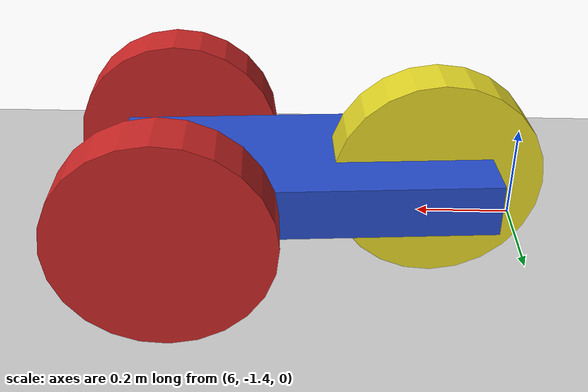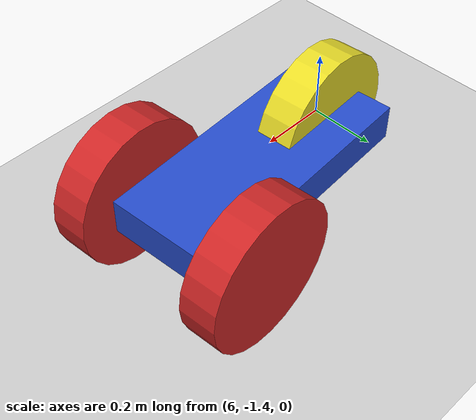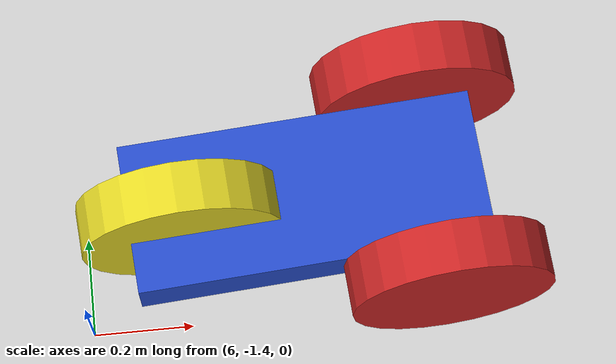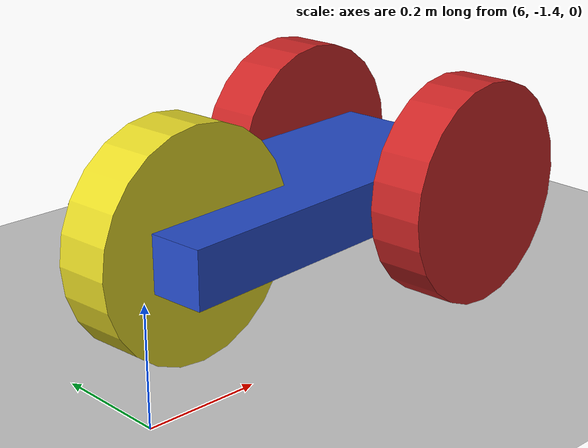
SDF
<sdf version="1.6">
 <world name="default">
  <model name="ground_plane">
   <static>1</static>
   <link name="link">
    <collision name="collision">
     <geometry><plane><normal>0 0 1</normal><size>100 100</size></plane></geometry>
     <surface><friction><ode><mu>100</mu><mu2>50</mu2></ode></friction></surface>
    </collision>
    <visual name="visual">
     <cast_shadows>0</cast_shadows>
     <geometry><plane><normal>0 0 1</normal><size>100 100</size></plane></geometry>
     <material>
      <script><uri>file://media/materials/scripts/gazebo.material</uri><name>Gazebo/Grey</name></script>
     </material>
    </visual>
   </link>
  </model>
  <model name="HumanoidRobot_0">
   <link name="base_link">
    <pose>-0.0625 -5e-06 0 0 -0 0</pose>
    <inertial>
     <mass>1</mass>
     <inertia>
      <ixx>0.166667</ixx>
      <ixy>0</ixy>
      <ixz>0</ixz>
      <iyy>0.166667</iyy>
      <iyz>0</iyz>
      <izz>0.166667</izz>
     </inertia>
    </inertial>
    <visual name="visual">
     <geometry><box><size>0.7 0.3 0.1</size></box></geometry>
     <material>
      <lighting>1</lighting>
      <script><uri>file://media/materials/scripts/gazebo.material</uri><name>Gazebo/Blue</name></script>
      <shader type="pixel"><normal_map>__default__</normal_map></shader>
      <ambient>0 0 1 1</ambient>
      <diffuse>0 0 1 1</diffuse>
      <specular>0 0 0 1</specular>
      <emissive>0 0 0 1</emissive>
     </material>
    </visual>
    <collision name="collision">
     <geometry><box><size>0.7 0.3 0.1</size></box></geometry>
     <surface>
      <friction>
       <ode><mu>1</mu><mu2>1</mu2><fdir1>0 0 0</fdir1><slip1>0</slip1><slip2>0</slip2></ode>
       <torsional>
        <coefficient>1</coefficient>
        <patch_radius>0</patch_radius>
        <surface_radius>0</surface_radius>
        <use_patch_radius>1</use_patch_radius>
        <ode><slip>0</slip></ode>
       </torsional>
      </friction>
      <bounce><restitution_coefficient>0</restitution_coefficient><threshold>1e+06</threshold></bounce>
      <contact>
       <collide_without_contact>0</collide_without_contact>
       <collide_without_contact_bitmask>1</collide_without_contact_bitmask>
       <collide_bitmask>1</collide_bitmask>
       <ode>
        <soft_cfm>0</soft_cfm>
        <soft_erp>0.2</soft_erp>
        <kp>1e+13</kp>
        <kd>1</kd>
        <max_vel>0.01</max_vel>
        <min_depth>0</min_depth>
       </ode>
       <bullet>
        <split_impulse>1</split_impulse>
        <split_impulse_penetration_threshold>-0.01</split_impulse_penetration_threshold>
        <soft_cfm>0</soft_cfm>
        <soft_erp>0.2</soft_erp>
        <kp>1e+13</kp>
        <kd>1</kd>
       </bullet>
      </contact>
     </surface>
    </collision>
   </link>
   <link name="right_wheel">
    <pose>0.1875 -0.200005 0 0 -0 0</pose>
    <inertial>
     <mass>1</mass>
     <inertia><ixx>0.145833</ixx><ixy>0</ixy><ixz>0</ixz><iyy>0.145833</iyy><iyz>0</iyz><izz>0.125</izz></inertia>
    </inertial>
    <visual name="visual">
     <pose>0 0 0 1.5707 -0 0</pose>
     <geometry><cylinder><radius>0.2</radius><length>0.1</length></cylinder></geometry>
     <material>
      <lighting>1</lighting>
      <script><uri>file://media/materials/scripts/gazebo.material</uri><name>Gazebo/Red</name></script>
      <shader type="pixel"><normal_map>__default__</normal_map></shader>
      <ambient>1 0 0 1</ambient>
      <diffuse>1 0 0 1</diffuse>
      <specular>0 0 0 1</specular>
      <emissive>0 0 0 1</emissive>
     </material>
    </visual>
    <collision name="collision">
     <pose>0 0 0 1.5707 -0 0</pose>
     <geometry><cylinder><radius>0.2</radius><length>0.1</length></cylinder></geometry>
     <surface>
      <friction>
       <ode><mu>1</mu><mu2>1</mu2><fdir1>0 0 0</fdir1><slip1>0</slip1><slip2>0</slip2></ode>
       <torsional>
        <coefficient>1</coefficient>
        <patch_radius>0</patch_radius>
        <surface_radius>0</surface_radius>
        <use_patch_radius>1</use_patch_radius>
        <ode><slip>0</slip></ode>
       </torsional>
      </friction>
      <bounce><restitution_coefficient>0</restitution_coefficient><threshold>1e+06</threshold></bounce>
      <contact>
       <collide_without_contact>0</collide_without_contact>
       <collide_without_contact_bitmask>1</collide_without_contact_bitmask>
       <collide_bitmask>1</collide_bitmask>
       <ode>
        <soft_cfm>0</soft_cfm>
        <soft_erp>0.2</soft_erp>
        <kp>1e+13</kp>
        <kd>1</kd>
        <max_vel>0.01</max_vel>
        <min_depth>0</min_depth>
       </ode>
       <bullet>
        <split_impulse>1</split_impulse>
        <split_impulse_penetration_threshold>-0.01</split_impulse_penetration_threshold>
        <soft_cfm>0</soft_cfm>
        <soft_erp>0.2</soft_erp>
        <kp>1e+13</kp>
        <kd>1</kd>
       </bullet>
      </contact>
     </surface>
    </collision>
   </link>
   <link name="left_wheel">
    <pose>0.1875 0.199995 0 0 -0 0</pose>
    <inertial>
     <mass>1</mass>
     <inertia><ixx>0.145833</ixx><ixy>0</ixy><ixz>0</ixz><iyy>0.145833</iyy><iyz>0</iyz><izz>0.125</izz></inertia>
    </inertial>
    <visual name="visual">
     <pose>0 0 0 1.5707 -0 0</pose>
     <geometry><cylinder><radius>0.2</radius><length>0.1</length></cylinder></geometry>
     <material>
      <lighting>1</lighting>
      <script><uri>file://media/materials/scripts/gazebo.material</uri><name>Gazebo/Red</name></script>
      <shader type="pixel"><normal_map>__default__</normal_map></shader>
      <ambient>1 0 0 1</ambient>
      <diffuse>1 0 0 1</diffuse>
      <specular>0 0 0 1</specular>
      <emissive>0 0 0 1</emissive>
     </material>
    </visual>
    <collision name="collision">
     <pose>0 0 0 1.5707 -0 0</pose>
     <geometry><cylinder><radius>0.2</radius><length>0.1</length></cylinder></geometry>
     <surface>
      <friction>
       <ode><mu>1</mu><mu2>1</mu2><fdir1>0 0 0</fdir1><slip1>0</slip1><slip2>0</slip2></ode>
       <torsional>
        <coefficient>1</coefficient>
        <patch_radius>0</patch_radius>
        <surface_radius>0</surface_radius>
        <use_patch_radius>1</use_patch_radius>
        <ode><slip>0</slip></ode>
       </torsional>
      </friction>
      <bounce><restitution_coefficient>0</restitution_coefficient><threshold>1e+06</threshold></bounce>
      <contact>
       <collide_without_contact>0</collide_without_contact>
       <collide_without_contact_bitmask>1</collide_without_contact_bitmask>
       <collide_bitmask>1</collide_bitmask>
       <ode>
        <soft_cfm>0</soft_cfm>
        <soft_erp>0.2</soft_erp>
        <kp>1e+13</kp>
        <kd>1</kd>
        <max_vel>0.01</max_vel>
        <min_depth>0</min_depth>
       </ode>
       <bullet>
        <split_impulse>1</split_impulse>
        <split_impulse_penetration_threshold>-0.01</split_impulse_penetration_threshold>
        <soft_cfm>0</soft_cfm>
        <soft_erp>0.2</soft_erp>
        <kp>1e+13</kp>
        <kd>1</kd>
       </bullet>
      </contact>
     </surface>
    </collision>
   </link>
   <link name="caster_wheel">
    <pose>-0.3125 -5e-06 0 0 -0 0</pose>
    <inertial>
     <mass>1</mass>
     <inertia><ixx>0.145833</ixx><ixy>0</ixy><ixz>0</ixz><iyy>0.145833</iyy><iyz>0</iyz><izz>0.125</izz></inertia>
    </inertial>
    <visual name="visual">
     <pose>0 0 0 1.5707 -0 0</pose>
     <geometry><cylinder><radius>0.2</radius><length>0.1</length></cylinder></geometry>
     <material>
      <lighting>1</lighting>
      <script><uri>file://media/materials/scripts/gazebo.material</uri><name>Gazebo/Yellow</name></script>
      <shader type="pixel"><normal_map>__default__</normal_map></shader>
      <ambient>1 1 0 1</ambient>
      <diffuse>1 1 0 1</diffuse>
      <specular>0 0 0 1</specular>
      <emissive>0 0 0 1</emissive>
     </material>
    </visual>
    <collision name="collision">
     <pose>0 0 0 1.5707 -0 0</pose>
     <geometry><cylinder><radius>0.2</radius><length>0.1</length></cylinder></geometry>
     <surface>
      <friction>
       <ode><mu>1</mu><mu2>1</mu2><fdir1>0 0 0</fdir1><slip1>0</slip1><slip2>0</slip2></ode>
       <torsional>
        <coefficient>1</coefficient>
        <patch_radius>0</patch_radius>
        <surface_radius>0</surface_radius>
        <use_patch_radius>1</use_patch_radius>
        <ode><slip>0</slip></ode>
       </torsional>
      </friction>
      <bounce><restitution_coefficient>0</restitution_coefficient><threshold>1e+06</threshold></bounce>
      <contact>
       <collide_without_contact>0</collide_without_contact>
       <collide_without_contact_bitmask>1</collide_without_contact_bitmask>
       <collide_bitmask>1</collide_bitmask>
       <ode>
        <soft_cfm>0</soft_cfm>
        <soft_erp>0.2</soft_erp>
        <kp>1e+13</kp>
        <kd>1</kd>
        <max_vel>0.01</max_vel>
        <min_depth>0</min_depth>
       </ode>
       <bullet>
        <split_impulse>1</split_impulse>
        <split_impulse_penetration_threshold>-0.01</split_impulse_penetration_threshold>
        <soft_cfm>0</soft_cfm>
        <soft_erp>0.2</soft_erp>
        <kp>1e+13</kp>
        <kd>1</kd>
       </bullet>
      </contact>
     </surface>
    </collision>
   </link>
   <joint name="base_link_JOINT_0" type="revolute">
    <parent>base_link</parent>
    <child>right_wheel</child>
    <axis>
     <xyz>0 0 1</xyz>
     <use_parent_model_frame>0</use_parent_model_frame>
     <limit>
      <lower>-1.79769e+308</lower>
      <upper>1.79769e+308</upper>
      <effort>-1</effort>
      <velocity>-1</velocity>
     </limit>
     <dynamics>
      <spring_reference>0</spring_reference>
      <spring_stiffness>0</spring_stiffness>
      <damping>0</damping>
     </dynamics>
    </axis>
    <physics>
     <ode><limit><cfm>0</cfm><erp>0.2</erp></limit><suspension><cfm>0</cfm><erp>0.2</erp></suspension></ode>
    </physics>
   </joint>
   <joint name="base_link_JOINT_1" type="revolute">
    <parent>base_link</parent>
    <child>left_wheel</child>
    <axis>
     <xyz>0 0 1</xyz>
     <use_parent_model_frame>0</use_parent_model_frame>
     <limit>
      <lower>-1.79769e+308</lower>
      <upper>1.79769e+308</upper>
      <effort>-1</effort>
      <velocity>-1</velocity>
     </limit>
     <dynamics>
      <spring_reference>0</spring_reference>
      <spring_stiffness>0</spring_stiffness>
      <damping>0</damping>
     </dynamics>
    </axis>
    <physics>
     <ode><limit><cfm>0</cfm><erp>0.2</erp></limit><suspension><cfm>0</cfm><erp>0.2</erp></suspension></ode>
    </physics>
   </joint>
   <joint name="base_link_JOINT_2" type="fixed">
    <parent>base_link</parent>
    <child>caster_wheel</child>
    <physics>
     <ode><limit><cfm>0</cfm><erp>0.2</erp></limit><suspension><cfm>0</cfm><erp>0.2</erp></suspension></ode>
    </physics>
   </joint>
   <static>0</static>
   <pose>6.50826 -1.20997 0.200004 0 -2e-06 0.074087</pose>
  </model>
 </world>
</sdf>
